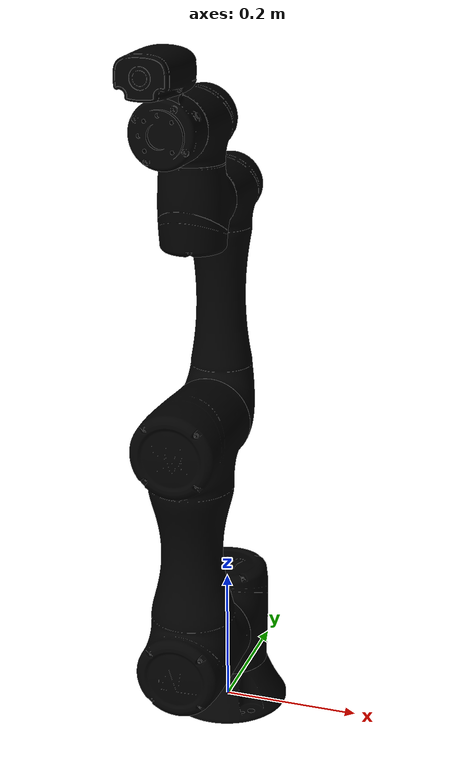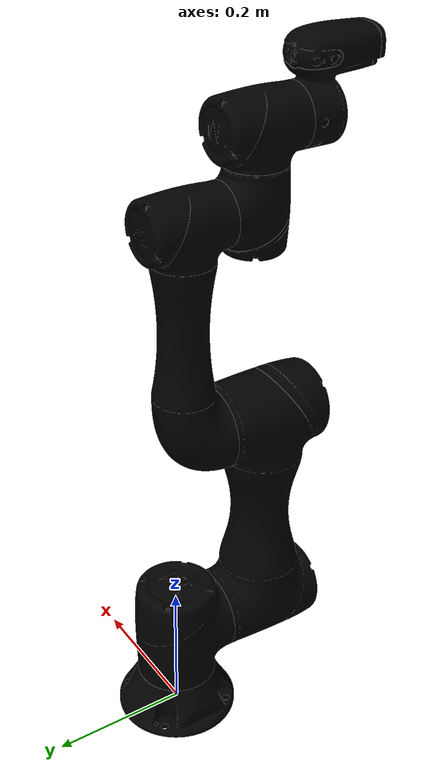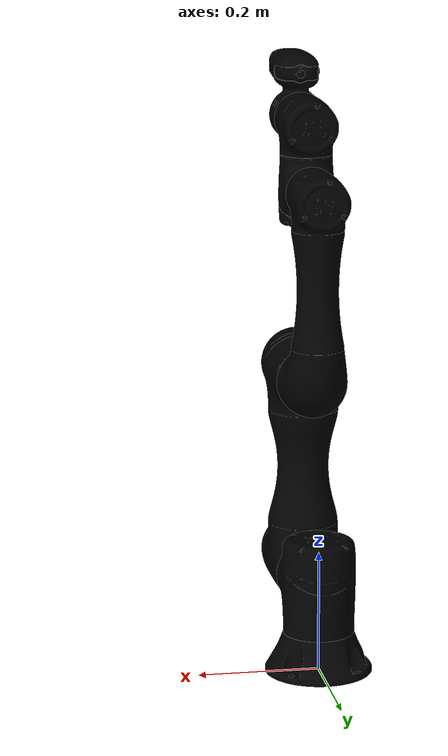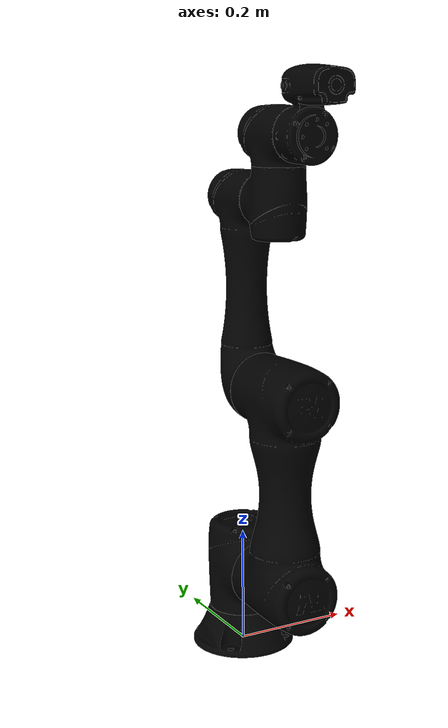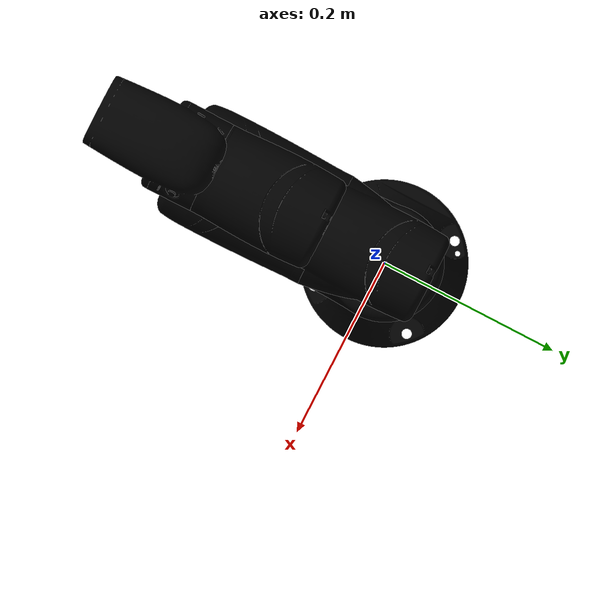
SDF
<?xml version="1.0" ?>
<sdf version='1.8'>
  <model name='tm5-700'>
    <link name='base'>
      <inertial>
        <pose>0 0 0 0 0 0</pose>
        <mass>1</mass>
        <inertia>
          <ixx>0.00110833289</ixx>
          <ixy>0</ixy>
          <ixz>0</ixz>
          <iyy>0.00110833289</iyy>
          <iyz>0</iyz>
          <izz>0.0018</izz>
        </inertia>
      </inertial>
      <collision name='base_fixed_joint_lump__link_0_collision'>
        <pose>0 0 0 0 0 0</pose>
        <geometry>
          <mesh>
            <scale>1 1 1</scale>
            <uri>package://tm_description/meshes/tm5-900/collision/tm5-base_c.stl</uri>
          </mesh>
        </geometry>
      </collision>
      <visual name='base_fixed_joint_lump__link_0_visual'>
        <pose>0 0 0 0 0 0</pose>
        <geometry>
          <mesh>
            <scale>1 1 1</scale>
            <uri>package://tm_description/meshes/tm5-900/visual/tm5-base.obj</uri>
          </mesh>
        </geometry>
        <material>
          <diffuse>0 0 0 1</diffuse>
          <ambient>0 0 0 1</ambient>
        </material>
      </visual>
    </link>
    <joint name='joint_1' type='revolute'>
      <pose relative_to='base'>0 0 0.1452 0 0 0</pose>
      <parent>base</parent>
      <child>link_1</child>
      <axis>
        <xyz>0 0 1</xyz>
        <limit>
          <lower>-4.7123889803846897</lower>
          <upper>4.7123889803846897</upper>
          <effort>157</effort>
          <velocity>3.1415926535897931</velocity>
        </limit>
        <dynamics>
          <damping>0</damping>
          <friction>0</friction>
          <spring_reference>0</spring_reference>
          <spring_stiffness>0</spring_stiffness>
        </dynamics>
      </axis>
    </joint>
    <link name='link_1'>
      <pose relative_to='joint_1'>0 0 0 0 0 0</pose>
      <inertial>
        <pose>0 0 0 0 0 0</pose>
        <mass>4.032</mass>
        <inertia>
          <ixx>0.0088001190000000003</ixx>
          <ixy>0</ixy>
          <ixz>0</ixz>
          <iyy>0.011548981999999999</iyy>
          <iyz>0</iyz>
          <izz>0.011970081</izz>
        </inertia>
      </inertial>
      <collision name='link_1_collision'>
        <pose>0 0 0 0 0 0</pose>
        <geometry>
          <mesh>
            <scale>1 1 1</scale>
            <uri>package://tm_description/meshes/tm5-900/collision/tmr_400w_01_c.stl</uri>
          </mesh>
        </geometry>
        <surface>
          <contact>
            <ode/>
          </contact>
          <friction>
            <ode/>
          </friction>
        </surface>
      </collision>
      <visual name='link_1_visual'>
        <pose>0 0 0 0 0 0</pose>
        <geometry>
          <mesh>
            <scale>1 1 1</scale>
            <uri>package://tm_description/meshes/tm5-900/visual/tmr_400w_01.obj</uri>
          </mesh>
        </geometry>
        <material>
          <diffuse>0 0 0 1</diffuse>
          <ambient>0 0 0 1</ambient>
        </material>
      </visual>
      <self_collide>true</self_collide>
    </link>
    <joint name='joint_2' type='revolute'>
      <pose relative_to='link_1'>0 0 0 -1.570795999973835 -1.570795999647377 0</pose>
      <parent>link_1</parent>
      <child>link_2</child>
      <axis>
        <xyz>0 0 1</xyz>
        <limit>
          <lower>-3.1415926535897931</lower>
          <upper>3.1415926535897931</upper>
          <effort>157</effort>
          <velocity>3.1415926535897931</velocity>
        </limit>
        <dynamics>
          <damping>0</damping>
          <friction>0</friction>
          <spring_reference>0</spring_reference>
          <spring_stiffness>0</spring_stiffness>
        </dynamics>
      </axis>
    </joint>
    <link name='link_2'>
      <pose relative_to='joint_2'>0 0 0 0 0 0</pose>
      <inertial>
        <pose>0 0 0 0 0 0</pose>
        <mass>8.5670000000000002</mass>
        <inertia>
          <ixx>0.023552072</ixx>
          <ixy>0</ixy>
          <ixz>0</ixz>
          <iyy>0.19825197</iyy>
          <iyz>0</iyz>
          <izz>0.20459253999999999</izz>
        </inertia>
      </inertial>
      <collision name='link_2_collision'>
        <pose>0 0 0 0 0 0</pose>
        <geometry>
          <mesh>
            <scale>1 1 1</scale>
            <uri>package://tm_description/meshes/tm5-700/collision/tm5-700_arm1_c.stl</uri>
          </mesh>
        </geometry>
        <surface>
          <contact>
            <ode/>
          </contact>
          <friction>
            <ode/>
          </friction>
        </surface>
      </collision>
      <visual name='link_2_visual'>
        <pose>0 0 0 0 0 0</pose>
        <geometry>
          <mesh>
            <scale>1 1 1</scale>
            <uri>package://tm_description/meshes/tm5-700/visual/tm5-700_arm1.obj</uri>
          </mesh>
        </geometry>
        <material>
          <diffuse>0 0 0 1</diffuse>
          <ambient>0 0 0 1</ambient>
        </material>
      </visual>
      <self_collide>true</self_collide>
    </link>
    <joint name='joint_3' type='revolute'>
      <pose relative_to='link_2'>0.329 0 0 0 0 0</pose>
      <parent>link_2</parent>
      <child>link_3</child>
      <axis>
        <xyz>0 0 1</xyz>
        <limit>
          <lower>-2.7052603405912108</lower>
          <upper>2.7052603405912108</upper>
          <effort>157</effort>
          <velocity>3.1415926535897931</velocity>
        </limit>
        <dynamics>
          <damping>0</damping>
          <friction>0</friction>
          <spring_reference>0</spring_reference>
          <spring_stiffness>0</spring_stiffness>
        </dynamics>
      </axis>
    </joint>
    <link name='link_3'>
      <pose relative_to='joint_3'>0 0 0 0 0 0</pose>
      <inertial>
        <pose>0 0 0 0 0 0</pose>
        <mass>2.2730000000000001</mass>
        <inertia>
          <ixx>0.0033801809999999999</ixx>
          <ixy>0</ixy>
          <ixz>0</ixz>
          <iyy>0.033829143999999998</iyy>
          <iyz>0</iyz>
          <izz>0.034328203000000002</izz>
        </inertia>
      </inertial>
      <collision name='link_3_collision'>
        <pose>0 0 0 0 0 0</pose>
        <geometry>
          <mesh>
            <scale>1 1 1</scale>
            <uri>package://tm_description/meshes/tm5-700/collision/tm5-700_arm2_c.stl</uri>
          </mesh>
        </geometry>
        <surface>
          <contact>
            <ode/>
          </contact>
          <friction>
            <ode/>
          </friction>
        </surface>
      </collision>
      <visual name='link_3_visual'>
        <pose>0 0 0 0 0 0</pose>
        <geometry>
          <mesh>
            <scale>1 1 1</scale>
            <uri>package://tm_description/meshes/tm5-700/visual/tm5-700_arm2.obj</uri>
          </mesh>
        </geometry>
        <material>
          <diffuse>0 0 0 1</diffuse>
          <ambient>0 0 0 1</ambient>
        </material>
      </visual>
      <self_collide>true</self_collide>
    </link>
    <joint name='joint_4' type='revolute'>
      <pose relative_to='link_3'>0.3115 0 -0.1223 0 0 1.570796</pose>
      <parent>link_3</parent>
      <child>link_4</child>
      <axis>
        <xyz>0 0 1</xyz>
        <limit>
          <lower>-3.1415926535897931</lower>
          <upper>3.1415926535897931</upper>
          <effort>43</effort>
          <velocity>3.926990816987241</velocity>
        </limit>
        <dynamics>
          <damping>0</damping>
          <friction>0</friction>
          <spring_reference>0</spring_reference>
          <spring_stiffness>0</spring_stiffness>
        </dynamics>
      </axis>
    </joint>
    <link name='link_4'>
      <pose relative_to='joint_4'>0 0 0 0 0 0</pose>
      <inertial>
        <pose>0 0 0 0 0 0</pose>
        <mass>1.5760000000000001</mass>
        <inertia>
          <ixx>0.0020584050000000001</ixx>
          <ixy>0</ixy>
          <ixz>0</ixz>
          <iyy>0.0025630789999999998</iyy>
          <iyz>0</iyz>
          <izz>0.00264321</izz>
        </inertia>
      </inertial>
      <collision name='link_4_collision'>
        <pose>0 0 0 0 0 0</pose>
        <geometry>
          <mesh>
            <scale>1 1 1</scale>
            <uri>package://tm_description/meshes/tm5-900/collision/tmr_100w_01_c.stl</uri>
          </mesh>
        </geometry>
        <surface>
          <contact>
            <ode/>
          </contact>
          <friction>
            <ode/>
          </friction>
        </surface>
      </collision>
      <visual name='link_4_visual'>
        <pose>0 0 0 0 0 0</pose>
        <geometry>
          <mesh>
            <scale>1 1 1</scale>
            <uri>package://tm_description/meshes/tm5-900/visual/tmr_100w_01.obj</uri>
          </mesh>
        </geometry>
        <material>
          <diffuse>0 0 0 1</diffuse>
          <ambient>0 0 0 1</ambient>
        </material>
      </visual>
      <self_collide>true</self_collide>
    </link>
    <joint name='joint_5' type='revolute'>
      <pose relative_to='link_4'>0 -0.106 0 1.570796 0 0</pose>
      <parent>link_4</parent>
      <child>link_5</child>
      <axis>
        <xyz>0 0 1</xyz>
        <limit>
          <lower>-3.1415926535897931</lower>
          <upper>3.1415926535897931</upper>
          <effort>43</effort>
          <velocity>3.926990816987241</velocity>
        </limit>
        <dynamics>
          <damping>0</damping>
          <friction>0</friction>
          <spring_reference>0</spring_reference>
          <spring_stiffness>0</spring_stiffness>
        </dynamics>
      </axis>
    </joint>
    <link name='link_5'>
      <pose relative_to='joint_5'>0 0 0 0 0 0</pose>
      <inertial>
        <pose>0 0 0 0 0 0</pose>
        <mass>1.5760000000000001</mass>
        <inertia>
          <ixx>0.0020584050000000001</ixx>
          <ixy>0</ixy>
          <ixz>0</ixz>
          <iyy>0.0025630789999999998</iyy>
          <iyz>0</iyz>
          <izz>0.00264321</izz>
        </inertia>
      </inertial>
      <collision name='link_5_collision'>
        <pose>0 0 0 0 0 0</pose>
        <geometry>
          <mesh>
            <scale>1 1 1</scale>
            <uri>package://tm_description/meshes/tm5-900/collision/tmr_100w_02_c.stl</uri>
          </mesh>
        </geometry>
        <surface>
          <contact>
            <ode/>
          </contact>
          <friction>
            <ode/>
          </friction>
        </surface>
      </collision>
      <visual name='link_5_visual'>
        <pose>0 0 0 0 0 0</pose>
        <geometry>
          <mesh>
            <scale>1 1 1</scale>
            <uri>package://tm_description/meshes/tm5-900/visual/tmr_100w_02.obj</uri>
          </mesh>
        </geometry>
        <material>
          <diffuse>0 0 0 1</diffuse>
          <ambient>0 0 0 1</ambient>
        </material>
      </visual>
      <self_collide>true</self_collide>
    </link>
    <joint name='joint_6' type='revolute'>
      <pose relative_to='link_5'>0 -0.11315 0 1.570796 0 0</pose>
      <parent>link_5</parent>
      <child>link_6</child>
      <axis>
        <xyz>0 0 1</xyz>
        <limit>
          <lower>-4.7123889803846897</lower>
          <upper>4.7123889803846897</upper>
          <effort>43</effort>
          <velocity>3.926990816987241</velocity>
        </limit>
        <dynamics>
          <damping>0</damping>
          <friction>0</friction>
          <spring_reference>0</spring_reference>
          <spring_stiffness>0</spring_stiffness>
        </dynamics>
      </axis>
    </joint>
    <link name='link_6'>
      <pose relative_to='joint_6'>0 0 0 0 0 0</pose>
      <inertial>
        <pose>0 0 0 0 0 0</pose>
        <mass>0.65000000000000002</mass>
        <inertia>
          <ixx>0.00077454399999999995</ixx>
          <ixy>0</ixy>
          <ixz>0</ixz>
          <iyy>0.001383811</iyy>
          <iyz>0</iyz>
          <izz>0.0015594960000000001</izz>
        </inertia>
      </inertial>
      <collision name='link_6_collision'>
        <pose>0 0 0 0 0 0</pose>
        <geometry>
          <mesh>
            <scale>1 1 1</scale>
            <uri>package://tm_description/meshes/tm5-900/collision/tmr_ee_c.stl</uri>
          </mesh>
        </geometry>
        <surface>
          <contact>
            <ode/>
          </contact>
          <friction>
            <ode/>
          </friction>
        </surface>
      </collision>
      <visual name='link_6_visual'>
        <pose>0 0 0 0 0 0</pose>
        <geometry>
          <mesh>
            <scale>1 1 1</scale>
            <uri>package://tm_description/meshes/tm5-900/visual/tmr_ee.obj</uri>
          </mesh>
        </geometry>
        <material>
          <diffuse>0 0 0 1</diffuse>
          <ambient>0 0 0 1</ambient>
        </material>
      </visual>
      <self_collide>true</self_collide>
    </link>

    <joint name='base_fixed_joint' type="fixed">
      <pose relative_to="base">0 0 0 0 0 0</pose>
      <parent>base</parent>
      <child>link_0</child>
    </joint>

    <link name='link_0'>
      <pose relative_to="base_fixed_joint">0 0 0 0 0 0</pose>
    </link>

    <joint name='flange_fixed_joint' type="fixed">
      <pose relative_to="link_6">0 0 0 0 0 0</pose>
      <parent>link_6</parent>
      <child>flange</child>
    </joint>

    <link name='flange'>
      <pose relative_to="flange_fixed_joint">0 0 0 0 0 0</pose>
    </link>

    <ros2_control name="MyRobotHardware" type="system">
        <hardware>
            <plugin>gz_ros2_control/GazeboSimSystem</plugin>
        </hardware>

        <!-- List all joints with control interfaces -->
        <joint name="joint_1">
            <command_interface name="position"/>
            <state_interface name="position">
              <param name="initial_value">0.0</param>
            </state_interface>
            <state_interface name="velocity"/>
        </joint>

        <joint name="joint_2">
            <command_interface name="position"/>
            <state_interface name="position">
              <param name="initial_value">0.0</param>
            </state_interface>
            <state_interface name="velocity"/>
        </joint>

        <joint name="joint_3">
            <command_interface name="position"/>
            <state_interface name="position">
              <param name="initial_value">0.0</param>
            </state_interface>
            <state_interface name="velocity"/>
        </joint>

        <joint name="joint_4">
            <command_interface name="position"/>
            <state_interface name="position">
              <param name="initial_value">0.0</param>
            </state_interface>
            <state_interface name="velocity"/>
        </joint>

        <joint name="joint_5">
            <command_interface name="position"/>
            <state_interface name="position">
              <param name="initial_value">0.0</param>
            </state_interface>
            <state_interface name="velocity"/>
        </joint>

        <joint name="joint_6">
            <command_interface name="position"/>
            <state_interface name="position">
              <param name="initial_value">0.0</param>
            </state_interface>
            <state_interface name="velocity"/>
        </joint>
    </ros2_control>

    <plugin name='gz_ros2_control::GazeboSimROS2ControlPlugin' filename='libgz_ros2_control-system.so'>
      <parameters>/home/brian/arm_driver_ws/install/tm5-700_moveit_config/share/tm5-700_moveit_config/config/controllers.yaml</parameters>
    </plugin>

  </model>
</sdf>
